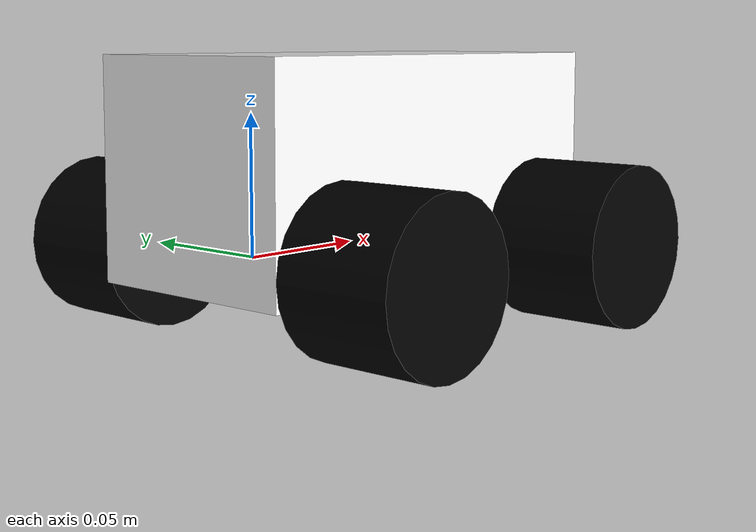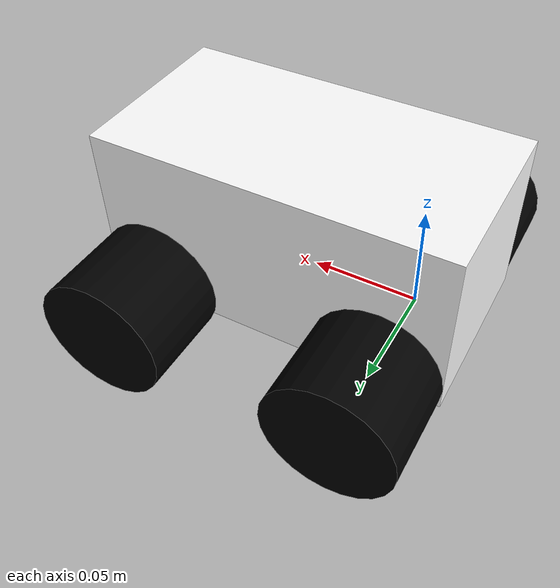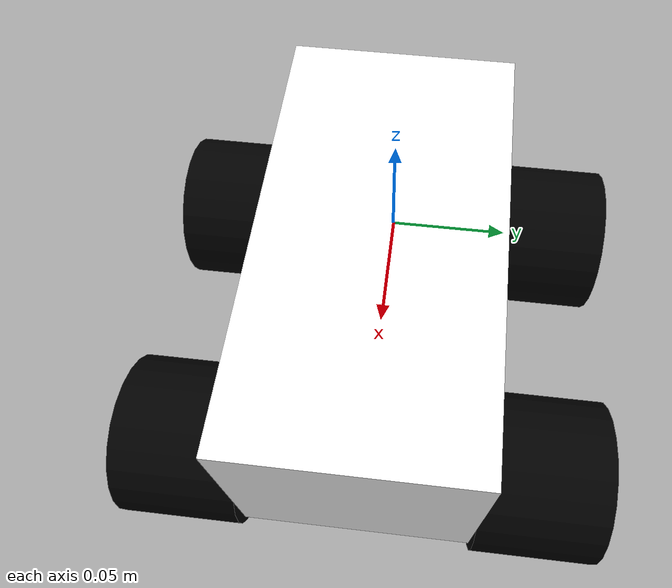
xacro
<?xml version="1.0"?>
<robot xmlns:xacro="http://www.ros.org/wiki/xacro" >

    <xacro:include filename="inertial_macros.xacro"/>

    <xacro:property name="chassis_length" value="0.165"/>
    <xacro:property name="chassis_width" value="0.085"/>
    <xacro:property name="chassis_height" value="0.080"/>
    <xacro:property name="chassis_mass" value="1.0"/>
    <xacro:property name="wheel_radius" value="0.030"/>
    <xacro:property name="wheel_thickness" value="0.045"/>
    <xacro:property name="wheel_mass" value="0.01"/>
    <xacro:property name="wheel_offset_x" value="0.030"/>
    <xacro:property name="wheel_offset_y" value="0.065"/>
    <xacro:property name="wheel_offset_z" value="0.01"/>
    <xacro:property name="caster_wheel_radius" value="0.01"/>
    <xacro:property name="caster_wheel_mass" value="0.01"/>
    <xacro:property name="caster_wheel_offset_x" value="0.075"/>
    <xacro:property name="caster_wheel_offset_z" value="${wheel_offset_z - wheel_radius + caster_wheel_radius}"/>

    <material name="white">
        <color rgba="1 1 1 1" />
    </material>

    <material name="orange">
        <color rgba="1 0.3 0.1 1"/>
    </material>

    <material name="blue">
        <color rgba="0.2 0.2 1 1"/>
    </material>

    <material name="black">
        <color rgba="0 0 0 1"/>
    </material>

    <material name="red">
        <color rgba="1 0 0 1"/>
    </material>

    <!-- BASE LINK -->

    <link name="base_link">

    </link>

    <!-- BASE_FOOTPRINT LINK -->

    <joint name="base_footprint_joint" type="fixed">
        <parent link="base_link"/>
        <child link="base_footprint"/>
        <origin xyz="0 0 0" rpy="0 0 0"/>
    </joint>

    <link name="base_footprint">
    </link>

    <!-- CHASSIS LINK -->

    <joint name="chassis_joint" type="fixed">
        <parent link="base_link"/>
        <child link="chassis"/>
        <origin xyz="${-wheel_offset_x} 0 ${-wheel_offset_z}"/>
    </joint>

    <link name="chassis">
        <visual>
            <origin xyz="${chassis_length/2} 0 ${chassis_height/2}"/>
            <geometry>
                <box size="${chassis_length} ${chassis_width} ${chassis_height}"/>
            </geometry>
            <material name="white"/>
        </visual>
        <collision>
            <origin xyz="${chassis_length/2} 0 ${chassis_height/2}"/>
            <geometry>
                <box size="${chassis_length} ${chassis_width} ${chassis_height}"/>
            </geometry>
        </collision>
        <xacro:inertial_box mass="0.5" x="${chassis_length}" y="${chassis_width}" z="${chassis_height}">
            <origin xyz="${chassis_length/2} 0 ${chassis_height/2}" rpy="0 0 0"/>
        </xacro:inertial_box>
    </link>

    <gazebo reference="chassis">
        <material>Gazebo/White</material>
    </gazebo>

    <!-- LEFT WHEEL LINK -->

    <joint name="left_wheel_joint" type="continuous">
        <parent link="base_link"/>
        <child link="left_wheel"/>
        <origin xyz="0.109 ${wheel_offset_y} 0" rpy="-${pi/2} 0 0" />
        <axis xyz="0 0 1"/>
    </joint>

    <link name="left_wheel">
        <visual>
            <geometry>
                <cylinder radius="${wheel_radius}" length="${wheel_thickness}"/>
            </geometry>
            <material name="black"/>
        </visual>
        <collision>
            <geometry>
                <sphere radius="${wheel_radius}"/>
            </geometry>
        </collision>
        <xacro:inertial_cylinder mass="${wheel_mass}" length="${wheel_thickness}" radius="${wheel_radius}">
            <origin xyz="0 0 0" rpy="0 0 0"/>
        </xacro:inertial_cylinder>
    </link>

    <gazebo reference="left_wheel">
        <material>Gazebo/Black</material>
    </gazebo>

    <!-- LEFT WHEEL_2 LINK -->

    <joint name="left_wheel_2_joint" type="continuous">
        <parent link="base_link"/>
        <child link="left_wheel_2"/>
        <origin xyz="0 ${wheel_offset_y} 0" rpy="-${pi/2} 0 0" />
        <axis xyz="0 0 1"/>
    </joint>

    <link name="left_wheel_2">
        <visual>
            <geometry>
                <cylinder radius="${wheel_radius}" length="${wheel_thickness}"/>
            </geometry>
            <material name="black"/>
        </visual>
        <collision>
            <geometry>
                <sphere radius="${wheel_radius}"/>
            </geometry>
        </collision>
        <xacro:inertial_cylinder mass="${wheel_mass}" length="${wheel_thickness}" radius="${wheel_radius}">
            <origin xyz="0 0 0" rpy="0 0 0"/>
        </xacro:inertial_cylinder>
    </link>

    <gazebo reference="left_wheel_2">
        <material>Gazebo/Black</material>
    </gazebo>

    <!-- RIGHT WHEEL LINK -->

    <joint name="right_wheel_joint" type="continuous">
        <parent link="base_link"/>
        <child link="right_wheel"/>
        <origin xyz="0 ${-wheel_offset_y} 0" rpy="${pi/2} 0 0" />
        <axis xyz="0 0 -1"/>
    </joint>

    <link name="right_wheel">
        <visual>
            <geometry>
                <cylinder radius="${wheel_radius}" length="${wheel_thickness}"/>
            </geometry>
            <material name="black"/>
        </visual>
        <collision>
            <geometry>
                <sphere radius="${wheel_radius}"/>
            </geometry>
        </collision>
        <xacro:inertial_cylinder mass="${wheel_mass}" length="${wheel_thickness}" radius="${wheel_radius}">
            <origin xyz="0 0 0" rpy="0 0 0"/>
        </xacro:inertial_cylinder>
    </link>

    <gazebo reference="right_wheel">
        <material>Gazebo/Black</material>
    </gazebo>

   <!-- RIGHT WHEEL_2 LINK -->

    <joint name="right_wheel_2_joint" type="continuous">
        <parent link="base_link"/>
        <child link="right_wheel_2"/>
        <origin xyz="0.109 ${-wheel_offset_y} 0" rpy="${pi/2} 0 0" />
        <axis xyz="0 0 -1"/>
    </joint>

    <link name="right_wheel_2">
        <visual>
            <geometry>
                <cylinder radius="${wheel_radius}" length="${wheel_thickness}"/>
            </geometry>
            <material name="black"/>
        </visual>
        <collision>
            <geometry>
                <sphere radius="${wheel_radius}"/>
            </geometry>
        </collision>
        <xacro:inertial_cylinder mass="${wheel_mass}" length="${wheel_thickness}" radius="${wheel_radius}">
            <origin xyz="0 0 0" rpy="0 0 0"/>
        </xacro:inertial_cylinder>
    </link>

    <gazebo reference="right_wheel_2">
        <material>Gazebo/Black</material>
    </gazebo>

    <!-- CASTER WHEEL LINK -->

</robot>
